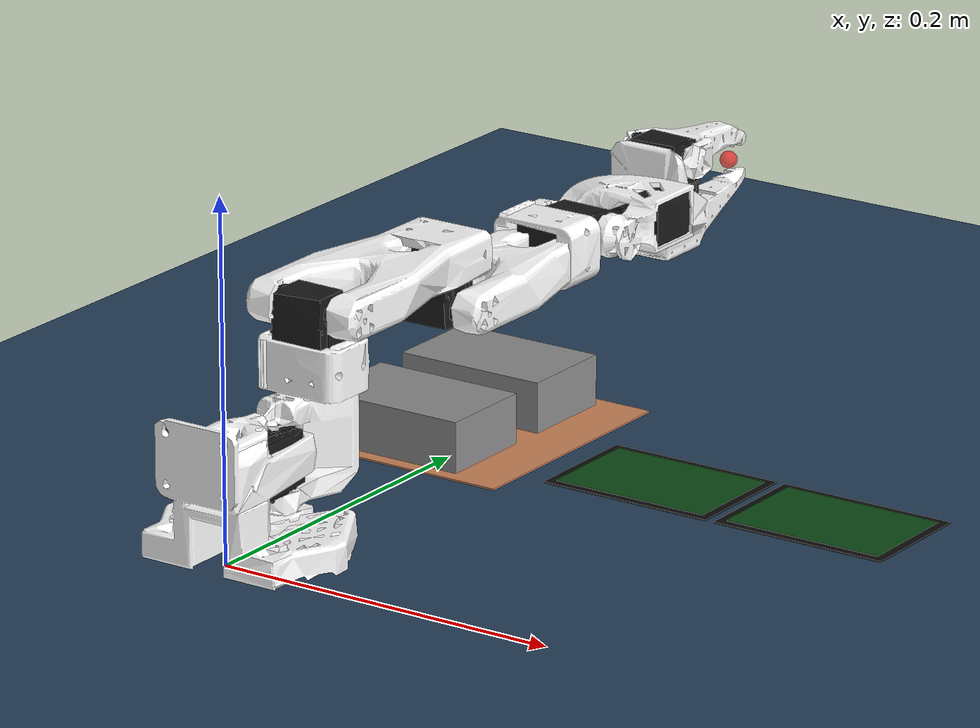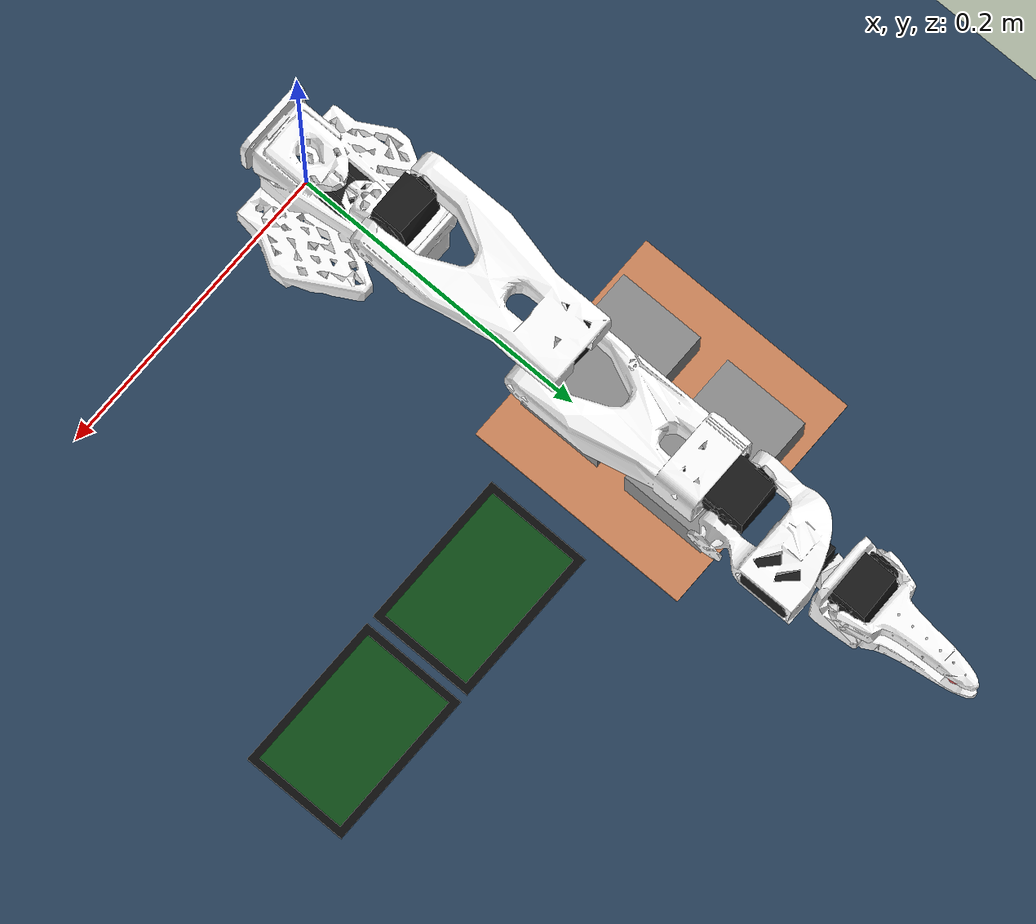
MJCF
<mujoco model="so101 place scene">
  <!-- SO-101(SO-ARM100 프록시) 로봇 포함. 경로는 이 파일 기준 상대.
       좌표계: follower arm base = 원점. 로봇은 +Y(작업영역)를 향하도록 base를 180° 회전(so_arm100.xml).
       단위 m. 실제 셋업(image.png) mm 좌표를 1/1000로 환산해 배치. -->
  <include file="so_arm100.xml"/>

  <statistic center="0.09 0.245 0.03" extent="0.6"/>

  <visual>
    <headlight diffuse="0.6 0.6 0.6" ambient="0.3 0.3 0.3" specular="0 0 0"/>
    <rgba haze="0.15 0.25 0.35 1"/>
    <global azimuth="-90" elevation="-30"/>
  </visual>

  <asset>
    <texture type="skybox" builtin="gradient" rgb1="0.3 0.5 0.7" rgb2="0 0 0" width="512" height="3072"/>
    <texture type="2d" name="groundplane" builtin="checker" mark="edge" rgb1="0.2 0.3 0.4" rgb2="0.1 0.2 0.3"
      markrgb="0.8 0.8 0.8" width="300" height="300"/>
    <material name="groundplane" texture="groundplane" texuniform="true" texrepeat="5 5" reflectance="0.2"/>
    <material name="yard_mat" rgba="0.80 0.52 0.35 1"/>            <!-- yard: 황토색 -->
    <material name="block_mat" rgba="0.55 0.55 0.55 1"/>           <!-- 콘크리트색 -->
    <material name="target_border_mat" rgba="0.05 0.05 0.05 1"/>   <!-- 검정 테두리 -->
    <material name="target_inner_mat" rgba="0.1 0.8 0.2 0.35"/>    <!-- 내부영역 마커(반투명) -->
  </asset>

  <worldbody>
    <light pos="0 0.25 1.5" dir="0 0 -1" directional="true"/>
    <geom name="floor" size="0 0 0.05" type="plane" material="groundplane"/>

    <!-- 작업공간 중심: 카메라 조준 기준(정적 body, dof 없음) -->
    <body name="work_center" pos="0.09 0.245 0.03" mocap="true">
      <site name="work_center_site" size="0.003" rgba="1 1 0 0.0"/>
    </body>

    <camera name="cam_front_left" pos="-0.385 0 0.45"
      xyaxes="0.7050 -0.7082 -0.0380 0.5149 0.4743 0.7140" fovy="70.27"/>
    <camera name="cam_front_right" pos="0.385 0 0.45"
      xyaxes="0.6189 0.7828 0.0642 -0.5884 0.4079 0.6981" fovy="71.57"/>

    <!-- yard: 150x150mm 시각 마커(충돌 없음). 좌하단 (-0.10,0.17), 중심 (-0.025,0.245). -->
    <geom name="yard" type="box" size="0.075 0.075 0.0005" pos="-0.025 0.245 0.0005"
      contype="0" conaffinity="0" material="yard_mat"/>

    <!-- 조작 대상 콘크리트 블록 2개: 90x57x30mm, 0.0251kg, free joint.
         시작 pose는 env.reset에서 배치 A/B로 설정(여기 값은 배치 A 기본). -->
    <body name="block1" pos="-0.025 0.2065 0.015">
      <freejoint name="block1_free"/>
      <geom name="block1" type="box" size="0.045 0.0285 0.015" material="block_mat" mass="0.0251"
        friction="1 0.01 0.001"/>
    </body>
    <body name="block2" pos="-0.025 0.2835 0.015">
      <freejoint name="block2_free"/>
      <geom name="block2" type="box" size="0.045 0.0285 0.015" material="block_mat" mass="0.0251"
        friction="1 0.01 0.001"/>
    </body>

    <!-- target 1: 내부영역 93x60mm + 검정 테두리 5mm(외곽 103x70mm). 충돌 없음.
         원래 중심 X=0.1465였으나 프록시 암의 수직 reach 확보 위해 두 target을 함께 -X 30mm 이동. -->
    <geom name="target1_border" type="box" size="0.0515 0.035 0.0004" pos="0.1165 0.230 0.0004"
      contype="0" conaffinity="0" material="target_border_mat"/>
    <geom name="target1_inner" type="box" size="0.0465 0.030 0.0005" pos="0.1165 0.230 0.0009"
      contype="0" conaffinity="0" material="target_inner_mat"/>
    <!-- 성공판정용 site: 블록 중심이 와야 할 곳(z=0.015) -->
    <site name="target1" pos="0.1165 0.230 0.015" size="0.003" rgba="1 1 0 0.0"/>

    <!-- target 2: 원래 중심 X=0.2545 → -30mm 이동. target1 테두리와 5mm 간격 유지. -->
    <geom name="target2_border" type="box" size="0.0515 0.035 0.0004" pos="0.2245 0.230 0.0004"
      contype="0" conaffinity="0" material="target_border_mat"/>
    <geom name="target2_inner" type="box" size="0.0465 0.030 0.0005" pos="0.2245 0.230 0.0009"
      contype="0" conaffinity="0" material="target_inner_mat"/>
    <site name="target2" pos="0.2245 0.230 0.015" size="0.003" rgba="1 1 0 0.0"/>
  </worldbody>
</mujoco>

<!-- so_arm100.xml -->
<mujoco model="so_arm100">
  <compiler angle="radian" meshdir="assets/"/>

  <option cone="elliptic" impratio="10"/>

  <asset>
    <material name="white" rgba="1 1 1 1"/>
    <material name="black" rgba="0.1 0.1 0.1 1"/>

    <mesh name="Base" file="Base.stl"/>
    <mesh name="Base_Motor" file="Base_Motor.stl"/>
    <mesh name="Rotation_Pitch" file="Rotation_Pitch.stl"/>
    <mesh name="Rotation_Pitch_Motor" file="Rotation_Pitch_Motor.stl"/>
    <mesh name="Upper_Arm" file="Upper_Arm.stl"/>
    <mesh name="Upper_Arm_Motor" file="Upper_Arm_Motor.stl"/>
    <mesh name="Lower_Arm" file="Lower_Arm.stl"/>
    <mesh name="Lower_Arm_Motor" file="Lower_Arm_Motor.stl"/>
    <mesh name="Wrist_Pitch_Roll" file="Wrist_Pitch_Roll.stl"/>
    <mesh name="Wrist_Pitch_Roll_Motor" file="Wrist_Pitch_Roll_Motor.stl"/>
    <mesh name="Fixed_Jaw" file="Fixed_Jaw.stl"/>
    <mesh name="Fixed_Jaw_Motor" file="Fixed_Jaw_Motor.stl"/>
    <mesh name="Fixed_Jaw_Collision_1" file="Fixed_Jaw_Collision_1.stl"/>
    <mesh name="Fixed_Jaw_Collision_2" file="Fixed_Jaw_Collision_2.stl"/>
    <mesh name="Moving_Jaw" file="Moving_Jaw.stl"/>
    <mesh name="Moving_Jaw_Collision_1" file="Moving_Jaw_Collision_1.stl"/>
    <mesh name="Moving_Jaw_Collision_2" file="Moving_Jaw_Collision_2.stl"/>
    <mesh name="Moving_Jaw_Collision_3" file="Moving_Jaw_Collision_3.stl"/>
  </asset>

  <default>
    <default class="so_arm100">
      <joint frictionloss="0.1" armature="0.1"/>
      <position kp="150" dampratio="1" forcerange="-8 8"/>
      <default class="Rotation">
        <joint axis="0 1 0" range="-1.92 1.92"/>
      </default>
      <default class="Pitch">
        <joint axis="1 0 0" range="-3.32 0.174"/>
      </default>
      <default class="Elbow">
        <joint axis="1 0 0" range="-0.174 3.14"/>
      </default>
      <default class="Wrist_Pitch">
        <joint axis="1 0 0" range="-1.66 1.66"/>
      </default>
      <default class="Wrist_Roll">
        <joint axis="0 1 0" range="-2.79 2.79"/>
      </default>
      <default class="Jaw">
        <joint axis="0 0 1" range="-0.174 1.75"/>
      </default>
      <default class="visual">
        <geom type="mesh" contype="0" conaffinity="0" density="0" group="2" material="white"/>
        <default class="motor_visual">
          <geom material="black"/>
        </default>
      </default>
      <default class="collision">
        <geom group="3" type="mesh" material="white"/>
        <default class="finger_collision">
          <geom type="box" solimp="2 1 0.01" solref="0.01 1" friction="1 0.005 0.0001"/>
        </default>
      </default>
    </default>
  </default>

  <worldbody>
    <body name="Base" childclass="so_arm100" euler="0 0 3.14159">
      <geom type="mesh" mesh="Base" class="visual"/>
      <geom type="mesh" mesh="Base_Motor" class="motor_visual"/>
      <geom type="mesh" mesh="Base" class="collision"/>
      <body name="Rotation_Pitch" pos="0 -0.0452 0.0165" quat="0.707105 0.707108 0 0">
        <inertial pos="-9.07886e-05 0.0590972 0.031089" quat="0.363978 0.441169 -0.623108 0.533504" mass="0.119226"
          diaginertia="5.94278e-05 5.89975e-05 3.13712e-05"/>
        <joint name="Rotation" class="Rotation"/>
        <geom type="mesh" mesh="Rotation_Pitch" class="visual"/>
        <geom type="mesh" mesh="Rotation_Pitch_Motor" class="motor_visual"/>
        <geom type="mesh" mesh="Rotation_Pitch" class="collision"/>
        <body name="Upper_Arm" pos="0 0.1025 0.0306" euler="1.57079 0 0">
          <inertial pos="-1.72052e-05 0.0701802 0.00310545" quat="0.50104 0.498994 -0.493562 0.50632" mass="0.162409"
            diaginertia="0.000213312 0.000167164 7.01522e-05"/>
          <joint name="Pitch" class="Pitch"/>
          <geom type="mesh" mesh="Upper_Arm" class="visual"/>
          <geom type="mesh" mesh="Upper_Arm_Motor" class="motor_visual"/>
          <geom type="mesh" mesh="Upper_Arm" class="collision"/>
          <body name="Lower_Arm" pos="0 0.11257 0.028" euler="-1.57079 0 0">
            <inertial pos="-0.00339604 0.00137796 0.0768007" quat="0.701995 0.0787996 0.0645626 0.704859"
              mass="0.147968" diaginertia="0.000138803 0.000107748 4.84242e-05"/>
            <joint name="Elbow" class="Elbow"/>
            <geom type="mesh" mesh="Lower_Arm" class="visual"/>
            <geom type="mesh" mesh="Lower_Arm_Motor" class="motor_visual"/>
            <geom type="mesh" mesh="Lower_Arm" class="collision"/>
            <body name="Wrist_Pitch_Roll" pos="0 0.0052 0.1349" euler="-1.57079 0 0">
              <inertial pos="-0.00852653 -0.0352279 -2.34622e-05" quat="-0.0522806 0.705235 0.0549524 0.704905"
                mass="0.0661321" diaginertia="3.45403e-05 2.39041e-05 1.94704e-05"/>
              <joint name="Wrist_Pitch" class="Wrist_Pitch"/>
              <geom type="mesh" mesh="Wrist_Pitch_Roll" class="visual"/>
              <geom type="mesh" mesh="Wrist_Pitch_Roll_Motor" class="motor_visual"/>
              <geom type="mesh" mesh="Wrist_Pitch_Roll" class="collision"/>
              <body name="Fixed_Jaw" pos="0 -0.0601 0" euler="0 1.57079 0">
                <inertial pos="0.00552377 -0.0280167 0.000483583" quat="0.41836 0.620891 -0.350644 0.562599"
                  mass="0.0929859" diaginertia="5.03136e-05 4.64098e-05 2.72961e-05"/>
                <joint name="Wrist_Roll" class="Wrist_Roll"/>
                <geom type="mesh" mesh="Fixed_Jaw" class="visual"/>
                <geom type="mesh" mesh="Fixed_Jaw_Motor" class="motor_visual"/>
                <geom type="mesh" mesh="Fixed_Jaw_Collision_1" class="collision"/>
                <geom type="mesh" mesh="Fixed_Jaw_Collision_2" class="collision"/>
                <geom class="finger_collision" name="fixed_jaw_pad_1" size="0.001 0.005 0.004" pos="0.0089 -0.1014 0"/>
                <geom class="finger_collision" name="fixed_jaw_pad_2" size="0.001 0.005 0.006" pos="0.0109 -0.0914 0"/>
                <geom class="finger_collision" name="fixed_jaw_pad_3" size="0.001 0.01 0.007" pos="0.0126 -0.0768 0"/>
                <geom class="finger_collision" name="fixed_jaw_pad_4" size="0.001 0.01 0.008" pos="0.0143 -0.0572 0"/>
                <!-- EEF/grasp 기준 site: 손가락 끝 쪽 그립 점(작은 물체를 손끝으로 집기). -->
                <site name="grasp_site" pos="0 -0.092 0" size="0.005" rgba="1 0 0 0.6" group="1"/>
                <!-- wrist 카메라(실제 셋업의 손목 캠). 그립 영역을 옆-위에서 내려다봄.
                     실제 마운트 정합(real2sim)은 보류 — 그립/물체가 잘 보이는 합리적 위치로 세팅.
                     Fixed_Jaw 로컬: pos(40,-50,70)mm, 그랩점(0,-100,0) 방향 조준, fovy 80. -->
                <camera name="cam_wrist" pos="0.0400 -0.0500 0.0700"
                  xyaxes="0.8682 0.0000 -0.4961 -0.2615 0.8498 -0.4576" fovy="80"/>
                <body name="Moving_Jaw" pos="-0.0202 -0.0244 0" quat="1.34924e-11 -3.67321e-06 1 -3.67321e-06">
                  <inertial pos="-0.00161745 -0.0303473 0.000449646" quat="0.696562 0.716737 -0.0239844 -0.0227026"
                    mass="0.0202444" diaginertia="1.11265e-05 8.99651e-06 2.99548e-06"/>
                  <joint name="Jaw" class="Jaw"/>
                  <geom type="mesh" mesh="Moving_Jaw" class="visual"/>
                  <geom type="mesh" mesh="Moving_Jaw_Collision_1" class="collision"/>
                  <geom type="mesh" mesh="Moving_Jaw_Collision_2" class="collision"/>
                  <geom type="mesh" mesh="Moving_Jaw_Collision_3" class="collision"/>
                  <geom class="finger_collision" name="moving_jaw_pad_1" size="0.001 0.005 0.004"
                    pos="-0.0113 -0.077 0"/>
                  <geom class="finger_collision" name="moving_jaw_pad_2" size="0.001 0.005 0.006"
                    pos="-0.0093 -0.067 0"/>
                  <geom class="finger_collision" name="moving_jaw_pad_3" size="0.001 0.01 0.006"
                    pos="-0.0073 -0.055 0"/>
                  <geom class="finger_collision" name="moving_jaw_pad_4" size="0.001 0.01 0.008"
                    pos="-0.0073 -0.035 0"/>
                </body>
              </body>
            </body>
          </body>
        </body>
      </body>
    </body>
  </worldbody>

  <actuator>
    <position class="Rotation" name="Rotation" joint="Rotation" inheritrange="1"/>
    <position class="Pitch" name="Pitch" joint="Pitch" inheritrange="1"/>
    <position class="Elbow" name="Elbow" joint="Elbow" inheritrange="1"/>
    <position class="Wrist_Pitch" name="Wrist_Pitch" joint="Wrist_Pitch" inheritrange="1"/>
    <position class="Wrist_Roll" name="Wrist_Roll" joint="Wrist_Roll" inheritrange="1"/>
    <position class="Jaw" name="Jaw" joint="Jaw" inheritrange="1"/>
  </actuator>

  <contact>
    <exclude body1="Base" body2="Rotation_Pitch"/>
  </contact>

  <keyframe>
    <key name="home" qpos="0 -1.57 1.57 1.57 -1.57 0" ctrl="0 -1.57 1.57 1.57 -1.57 0"/>
    <key name="rest" qpos="0 -3.32 3.11 1.18 0 -0.174" ctrl="0 -3.32 3.11 1.18 0 -0.174"/>
  </keyframe>
</mujoco>
